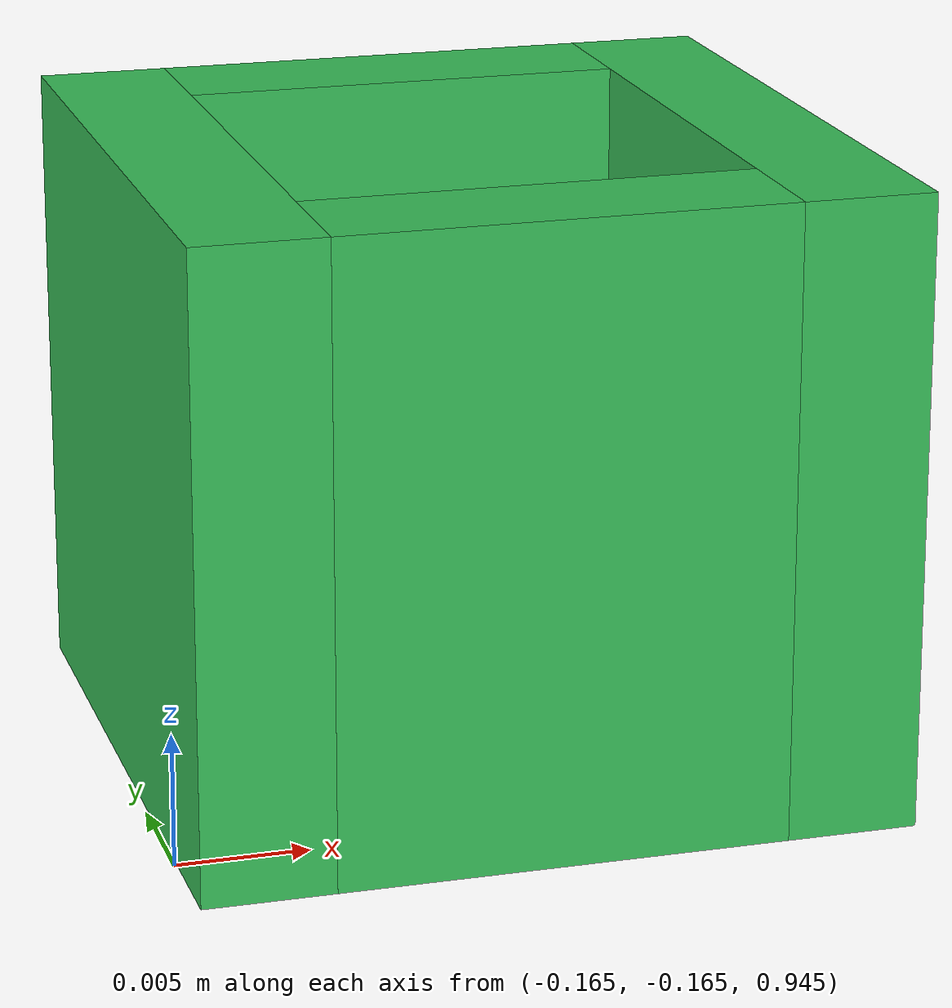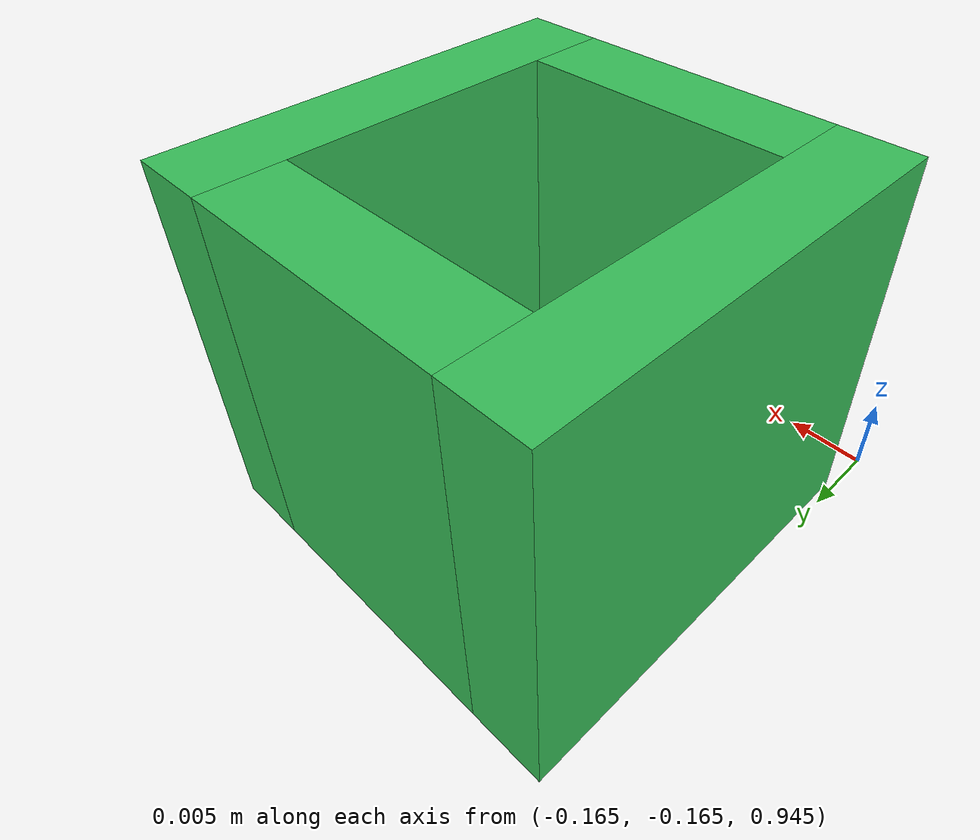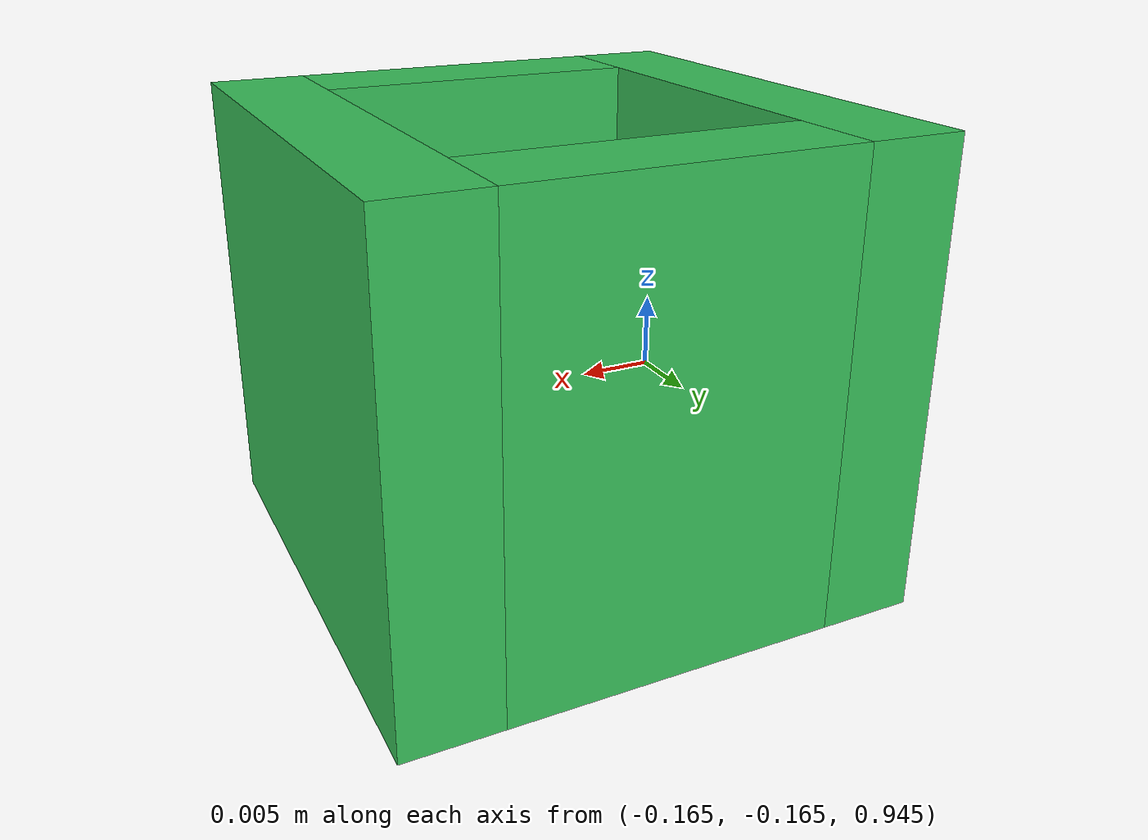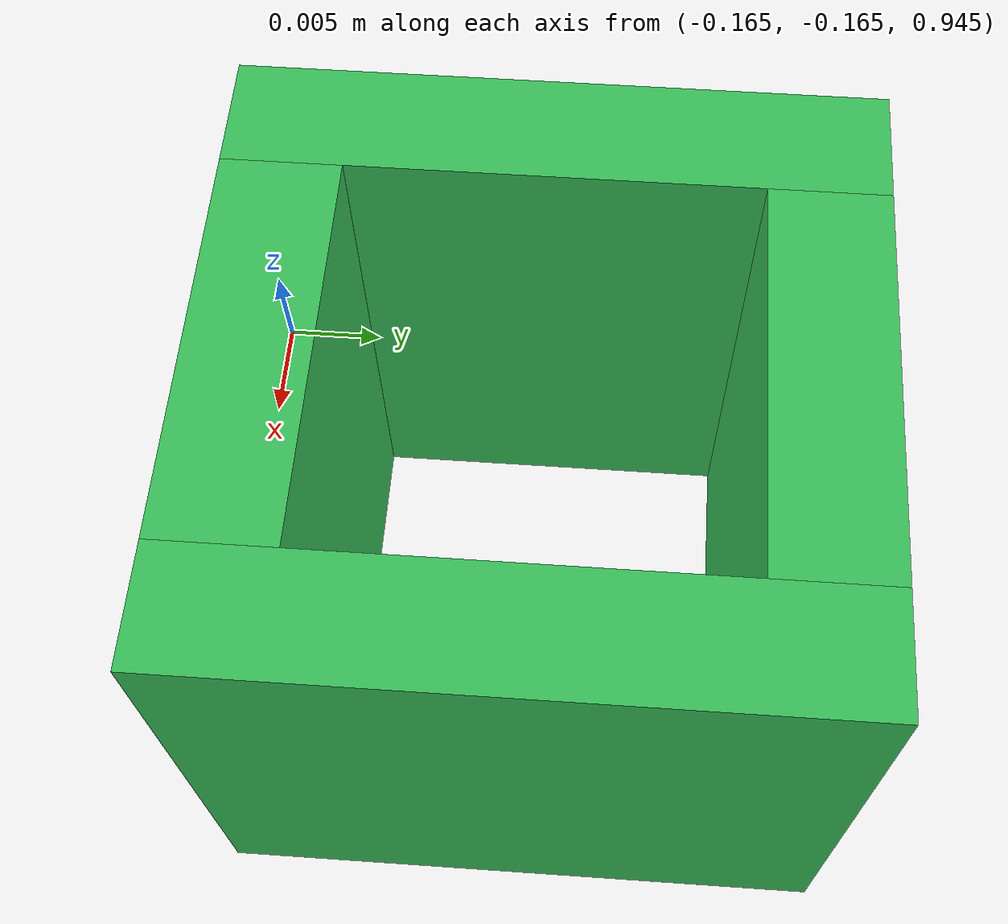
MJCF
<mujoco model="hanoi_disk_xsmall">
  <asset>
    <material name="hanoi_disk_xsmall_mat" rgba="0.22 0.75 0.35 1" specular="0.35" shininess="0.18"/>
    <material name="hanoi_disk_xsmall_collision_mat" rgba="0.55 0.55 0.55 1" specular="0.0" shininess="0.0" reflectance="0.0"/>
  </asset>

  <worldbody>
    <body name="hanoi_disk_xsmall" pos="-0.15 -0.15 0.955">
      <freejoint name="hanoi_disk_xsmall_joint"/>

      <!-- Y-direction plates (cover only middle segment to avoid overlap with X plates) -->
      <geom name="hanoi_disk_xsmall_visual_pos_y" type="box" pos="0 0.011295 0" size="0.00874 0.002555 0.012375"
            material="hanoi_disk_xsmall_mat" contype="0" conaffinity="0" density="0" group="1"/>
      <geom name="hanoi_disk_xsmall_visual_neg_y" type="box" pos="0 -0.011295 0" size="0.00874 0.002555 0.012375"
            material="hanoi_disk_xsmall_mat" contype="0" conaffinity="0" density="0" group="1"/>

      <!-- X-direction plates (cover outer segments with thickness) -->
      <geom name="hanoi_disk_xsmall_visual_pos_x" type="box" pos="0.011295 0 0" size="0.002555 0.01385 0.012375"
            material="hanoi_disk_xsmall_mat" contype="0" conaffinity="0" density="0" group="1"/>
      <geom name="hanoi_disk_xsmall_visual_neg_x" type="box" pos="-0.011295 0 0" size="0.002555 0.01385 0.012375"
            material="hanoi_disk_xsmall_mat" contype="0" conaffinity="0" density="0" group="1"/>

      <!-- Collision geometry (identical to visual geometry) -->
      <geom name="hanoi_disk_xsmall_collision_pos_y" type="box" pos="0 0.011295 0" size="0.00874 0.002555 0.012375"
            material="hanoi_disk_xsmall_collision_mat" density="100" mass="0.025" friction="1.1 0.02 0.002" group="3"/>
      <geom name="hanoi_disk_xsmall_collision_neg_y" type="box"  pos="0 -0.011295 0" size="0.00874 0.002555 0.012375"
            material="hanoi_disk_xsmall_collision_mat" density="100" mass="0.025" friction="1.1 0.02 0.002" group="3"/>
      <geom name="hanoi_disk_xsmall_collision_pos_x" type="box" pos="0.011295 0 0" size="0.002555 0.01385 0.012375"
            material="hanoi_disk_xsmall_collision_mat" density="100" mass="0.025" friction="1.1 0.02 0.002" group="3"/>
      <geom name="hanoi_disk_xsmall_collision_neg_x" type="box" pos="-0.011295 0 0" size="0.002555 0.01385 0.012375"
            material="hanoi_disk_xsmall_collision_mat" density="100" mass="0.025" friction="1.1 0.02 0.002" group="3"/>

      <!-- Reference sites -->
      <site name="hanoi_disk_xsmall_center_site" pos="0 0 0" size="0.002" rgba="0 0 0 0"/>
      <site name="hanoi_disk_xsmall_top_site" pos="0 0 0.012375" size="0.002" rgba="0 0 0 0"/>
      <site name="hanoi_disk_xsmall_bottom_site" pos="0 0 -0.012375" size="0.002" rgba="0 0 0 0"/>

    </body>
  </worldbody>
</mujoco>
